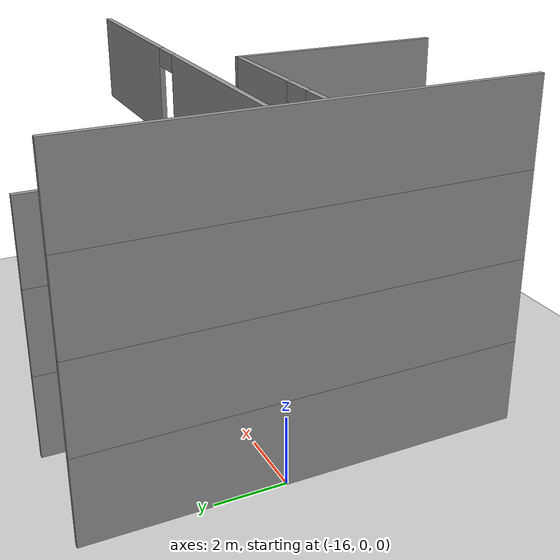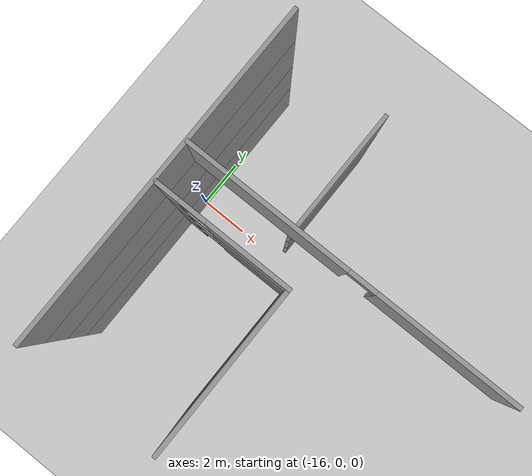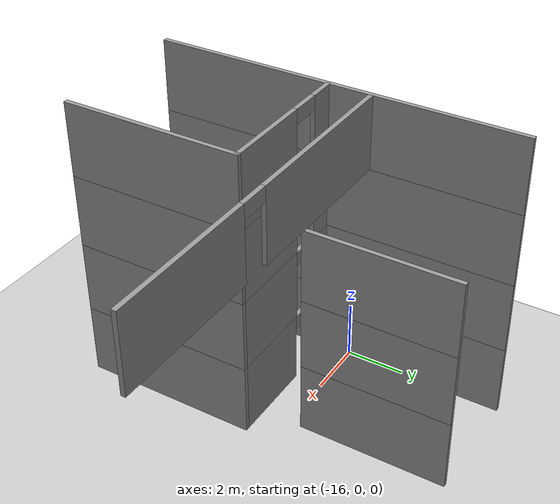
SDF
<sdf version="1.7">
 <world name="default">
  <model name="ground_plane">
   <static>1</static>
   <link name="link">
    <collision name="collision">
     <geometry><plane><normal>0 0 1</normal><size>100 100</size></plane></geometry>
     <surface>
      <contact><collide_bitmask>65535</collide_bitmask></contact>
      <friction><ode><mu>100</mu><mu2>50</mu2></ode></friction>
     </surface>
    </collision>
    <visual name="visual">
     <cast_shadows>0</cast_shadows>
     <geometry><plane><normal>0 0 1</normal><size>100 100</size></plane></geometry>
     <material>
      <script><uri>file://media/materials/scripts/gazebo.material</uri><name>Gazebo/Grey</name></script>
     </material>
    </visual>
   </link>
  </model>
  <model name="floor4plan_transp">
   <link name="Wall_101">
    <pose>-15.925 0 7.5 0 0 -1.5708</pose>
    <visual name="Wall_101_Visual">
     <pose>0 0 1.25 0 -0 0</pose>
     <geometry><box><size>12.5 0.15 2.5</size></box></geometry>
     <material>
      <script><uri>file://media/materials/scripts/gazebo.material</uri><name>Gazebo/Grey</name></script>
      <ambient>1 1 1 1</ambient>
      <shader type="pixel"/>
     </material>
     <meta><layer>3</layer></meta>
    </visual>
    <collision name="Wall_101_Collision">
     <pose>0 0 1.25 0 -0 0</pose>
     <geometry><box><size>12.5 0.15 2.5</size></box></geometry>
     <surface>
      <friction>
       <ode><mu>1</mu><mu2>1</mu2><fdir1>0 0 0</fdir1><slip1>0</slip1><slip2>0</slip2></ode>
       <torsional>
        <coefficient>1</coefficient>
        <patch_radius>0</patch_radius>
        <surface_radius>0</surface_radius>
        <use_patch_radius>1</use_patch_radius>
        <ode><slip>0</slip></ode>
       </torsional>
      </friction>
      <bounce><restitution_coefficient>0</restitution_coefficient><threshold>1e+06</threshold></bounce>
      <contact>
       <collide_without_contact>0</collide_without_contact>
       <collide_without_contact_bitmask>1</collide_without_contact_bitmask>
       <collide_bitmask>1</collide_bitmask>
       <ode>
        <soft_cfm>0</soft_cfm>
        <soft_erp>0.2</soft_erp>
        <kp>1e+13</kp>
        <kd>1</kd>
        <max_vel>0.01</max_vel>
        <min_depth>0</min_depth>
       </ode>
       <bullet>
        <split_impulse>1</split_impulse>
        <split_impulse_penetration_threshold>-0.01</split_impulse_penetration_threshold>
        <soft_cfm>0</soft_cfm>
        <soft_erp>0.2</soft_erp>
        <kp>1e+13</kp>
        <kd>1</kd>
       </bullet>
      </contact>
     </surface>
    </collision>
   </link>
   <link name="Wall_104">
    <pose>-9.94146 1.21683 7.5 0 -0 0</pose>
    <visual name="Wall_104_Visual_0">
     <pose>-3.03204 0 1.25 0 -0 0</pose>
     <geometry><box><size>5.93592 0.15 2.5</size></box></geometry>
     <material>
      <script><uri>file://media/materials/scripts/gazebo.material</uri><name>Gazebo/Grey</name></script>
      <ambient>1 1 1 1</ambient>
      <shader type="pixel"/>
     </material>
     <meta><layer>3</layer></meta>
    </visual>
    <visual name="Wall_104_Visual_1">
     <pose>3.46796 0 1.25 0 -0 0</pose>
     <geometry><box><size>5.06408 0.15 2.5</size></box></geometry>
     <material>
      <script><uri>file://media/materials/scripts/gazebo.material</uri><name>Gazebo/Grey</name></script>
      <ambient>1 1 1 1</ambient>
      <shader type="pixel"/>
     </material>
     <meta><layer>3</layer></meta>
    </visual>
    <visual name="Wall_104_Visual_2">
     <pose>0.435917 0 2.25 0 -0 0</pose>
     <geometry><box><size>1 0.15 0.5</size></box></geometry>
     <material>
      <script><uri>file://media/materials/scripts/gazebo.material</uri><name>Gazebo/Grey</name></script>
      <ambient>1 1 1 1</ambient>
      <shader type="pixel"/>
     </material>
     <meta><layer>3</layer></meta>
    </visual>
    <collision name="Wall_104_Collision_0">
     <pose>-3.03204 0 1.25 0 -0 0</pose>
     <geometry><box><size>5.93592 0.15 2.5</size></box></geometry>
     <surface>
      <friction>
       <ode><mu>1</mu><mu2>1</mu2><fdir1>0 0 0</fdir1><slip1>0</slip1><slip2>0</slip2></ode>
       <torsional>
        <coefficient>1</coefficient>
        <patch_radius>0</patch_radius>
        <surface_radius>0</surface_radius>
        <use_patch_radius>1</use_patch_radius>
        <ode><slip>0</slip></ode>
       </torsional>
      </friction>
      <bounce><restitution_coefficient>0</restitution_coefficient><threshold>1e+06</threshold></bounce>
      <contact>
       <collide_without_contact>0</collide_without_contact>
       <collide_without_contact_bitmask>1</collide_without_contact_bitmask>
       <collide_bitmask>1</collide_bitmask>
       <ode>
        <soft_cfm>0</soft_cfm>
        <soft_erp>0.2</soft_erp>
        <kp>1e+13</kp>
        <kd>1</kd>
        <max_vel>0.01</max_vel>
        <min_depth>0</min_depth>
       </ode>
       <bullet>
        <split_impulse>1</split_impulse>
        <split_impulse_penetration_threshold>-0.01</split_impulse_penetration_threshold>
        <soft_cfm>0</soft_cfm>
        <soft_erp>0.2</soft_erp>
        <kp>1e+13</kp>
        <kd>1</kd>
       </bullet>
      </contact>
     </surface>
    </collision>
    <collision name="Wall_104_Collision_1">
     <pose>3.46796 0 1.25 0 -0 0</pose>
     <geometry><box><size>5.06408 0.15 2.5</size></box></geometry>
     <surface>
      <friction>
       <ode><mu>1</mu><mu2>1</mu2><fdir1>0 0 0</fdir1><slip1>0</slip1><slip2>0</slip2></ode>
       <torsional>
        <coefficient>1</coefficient>
        <patch_radius>0</patch_radius>
        <surface_radius>0</surface_radius>
        <use_patch_radius>1</use_patch_radius>
        <ode><slip>0</slip></ode>
       </torsional>
      </friction>
      <bounce><restitution_coefficient>0</restitution_coefficient><threshold>1e+06</threshold></bounce>
      <contact>
       <collide_without_contact>0</collide_without_contact>
       <collide_without_contact_bitmask>1</collide_without_contact_bitmask>
       <collide_bitmask>1</collide_bitmask>
       <ode>
        <soft_cfm>0</soft_cfm>
        <soft_erp>0.2</soft_erp>
        <kp>1e+13</kp>
        <kd>1</kd>
        <max_vel>0.01</max_vel>
        <min_depth>0</min_depth>
       </ode>
       <bullet>
        <split_impulse>1</split_impulse>
        <split_impulse_penetration_threshold>-0.01</split_impulse_penetration_threshold>
        <soft_cfm>0</soft_cfm>
        <soft_erp>0.2</soft_erp>
        <kp>1e+13</kp>
        <kd>1</kd>
       </bullet>
      </contact>
     </surface>
    </collision>
    <collision name="Wall_104_Collision_2">
     <pose>0.435917 0 2.25 0 -0 0</pose>
     <geometry><box><size>1 0.15 0.5</size></box></geometry>
     <surface>
      <friction>
       <ode><mu>1</mu><mu2>1</mu2><fdir1>0 0 0</fdir1><slip1>0</slip1><slip2>0</slip2></ode>
       <torsional>
        <coefficient>1</coefficient>
        <patch_radius>0</patch_radius>
        <surface_radius>0</surface_radius>
        <use_patch_radius>1</use_patch_radius>
        <ode><slip>0</slip></ode>
       </torsional>
      </friction>
      <bounce><restitution_coefficient>0</restitution_coefficient><threshold>1e+06</threshold></bounce>
      <contact>
       <collide_without_contact>0</collide_without_contact>
       <collide_without_contact_bitmask>1</collide_without_contact_bitmask>
       <collide_bitmask>1</collide_bitmask>
       <ode>
        <soft_cfm>0</soft_cfm>
        <soft_erp>0.2</soft_erp>
        <kp>1e+13</kp>
        <kd>1</kd>
        <max_vel>0.01</max_vel>
        <min_depth>0</min_depth>
       </ode>
       <bullet>
        <split_impulse>1</split_impulse>
        <split_impulse_penetration_threshold>-0.01</split_impulse_penetration_threshold>
        <soft_cfm>0</soft_cfm>
        <soft_erp>0.2</soft_erp>
        <kp>1e+13</kp>
        <kd>1</kd>
       </bullet>
      </contact>
     </surface>
    </collision>
   </link>
   <link name="Wall_114">
    <pose>-13.4183 -0.240402 7.5 0 -0 0</pose>
    <visual name="Wall_114_Visual_0">
     <pose>-2.04171 0 1.25 0 -0 0</pose>
     <geometry><box><size>0.916574 0.15 2.5</size></box></geometry>
     <material>
      <script><uri>file://media/materials/scripts/gazebo.material</uri><name>Gazebo/Grey</name></script>
      <ambient>1 1 1 1</ambient>
      <shader type="pixel"/>
     </material>
     <meta><layer>3</layer></meta>
    </visual>
    <visual name="Wall_114_Visual_1">
     <pose>0.958287 0 1.25 0 -0 0</pose>
     <geometry><box><size>3.08343 0.15 2.5</size></box></geometry>
     <material>
      <script><uri>file://media/materials/scripts/gazebo.material</uri><name>Gazebo/Grey</name></script>
      <ambient>1 1 1 1</ambient>
      <shader type="pixel"/>
     </material>
     <meta><layer>3</layer></meta>
    </visual>
    <visual name="Wall_114_Visual_2">
     <pose>-1.08343 0 2.25 0 -0 0</pose>
     <geometry><box><size>1 0.15 0.5</size></box></geometry>
     <material>
      <script><uri>file://media/materials/scripts/gazebo.material</uri><name>Gazebo/Grey</name></script>
      <ambient>1 1 1 1</ambient>
      <shader type="pixel"/>
     </material>
     <meta><layer>3</layer></meta>
    </visual>
    <collision name="Wall_114_Collision_0">
     <pose>-2.04171 0 1.25 0 -0 0</pose>
     <geometry><box><size>0.916574 0.15 2.5</size></box></geometry>
     <surface>
      <friction>
       <ode><mu>1</mu><mu2>1</mu2><fdir1>0 0 0</fdir1><slip1>0</slip1><slip2>0</slip2></ode>
       <torsional>
        <coefficient>1</coefficient>
        <patch_radius>0</patch_radius>
        <surface_radius>0</surface_radius>
        <use_patch_radius>1</use_patch_radius>
        <ode><slip>0</slip></ode>
       </torsional>
      </friction>
      <bounce><restitution_coefficient>0</restitution_coefficient><threshold>1e+06</threshold></bounce>
      <contact>
       <collide_without_contact>0</collide_without_contact>
       <collide_without_contact_bitmask>1</collide_without_contact_bitmask>
       <collide_bitmask>1</collide_bitmask>
       <ode>
        <soft_cfm>0</soft_cfm>
        <soft_erp>0.2</soft_erp>
        <kp>1e+13</kp>
        <kd>1</kd>
        <max_vel>0.01</max_vel>
        <min_depth>0</min_depth>
       </ode>
       <bullet>
        <split_impulse>1</split_impulse>
        <split_impulse_penetration_threshold>-0.01</split_impulse_penetration_threshold>
        <soft_cfm>0</soft_cfm>
        <soft_erp>0.2</soft_erp>
        <kp>1e+13</kp>
        <kd>1</kd>
       </bullet>
      </contact>
     </surface>
    </collision>
    <collision name="Wall_114_Collision_1">
     <pose>0.958287 0 1.25 0 -0 0</pose>
     <geometry><box><size>3.08343 0.15 2.5</size></box></geometry>
     <surface>
      <friction>
       <ode><mu>1</mu><mu2>1</mu2><fdir1>0 0 0</fdir1><slip1>0</slip1><slip2>0</slip2></ode>
       <torsional>
        <coefficient>1</coefficient>
        <patch_radius>0</patch_radius>
        <surface_radius>0</surface_radius>
        <use_patch_radius>1</use_patch_radius>
        <ode><slip>0</slip></ode>
       </torsional>
      </friction>
      <bounce><restitution_coefficient>0</restitution_coefficient><threshold>1e+06</threshold></bounce>
      <contact>
       <collide_without_contact>0</collide_without_contact>
       <collide_without_contact_bitmask>1</collide_without_contact_bitmask>
       <collide_bitmask>1</collide_bitmask>
       <ode>
        <soft_cfm>0</soft_cfm>
        <soft_erp>0.2</soft_erp>
        <kp>1e+13</kp>
        <kd>1</kd>
        <max_vel>0.01</max_vel>
        <min_depth>0</min_depth>
       </ode>
       <bullet>
        <split_impulse>1</split_impulse>
        <split_impulse_penetration_threshold>-0.01</split_impulse_penetration_threshold>
        <soft_cfm>0</soft_cfm>
        <soft_erp>0.2</soft_erp>
        <kp>1e+13</kp>
        <kd>1</kd>
       </bullet>
      </contact>
     </surface>
    </collision>
    <collision name="Wall_114_Collision_2">
     <pose>-1.08343 0 2.25 0 -0 0</pose>
     <geometry><box><size>1 0.15 0.5</size></box></geometry>
     <surface>
      <friction>
       <ode><mu>1</mu><mu2>1</mu2><fdir1>0 0 0</fdir1><slip1>0</slip1><slip2>0</slip2></ode>
       <torsional>
        <coefficient>1</coefficient>
        <patch_radius>0</patch_radius>
        <surface_radius>0</surface_radius>
        <use_patch_radius>1</use_patch_radius>
        <ode><slip>0</slip></ode>
       </torsional>
      </friction>
      <bounce><restitution_coefficient>0</restitution_coefficient><threshold>1e+06</threshold></bounce>
      <contact>
       <collide_without_contact>0</collide_without_contact>
       <collide_without_contact_bitmask>1</collide_without_contact_bitmask>
       <collide_bitmask>1</collide_bitmask>
       <ode>
        <soft_cfm>0</soft_cfm>
        <soft_erp>0.2</soft_erp>
        <kp>1e+13</kp>
        <kd>1</kd>
        <max_vel>0.01</max_vel>
        <min_depth>0</min_depth>
       </ode>
       <bullet>
        <split_impulse>1</split_impulse>
        <split_impulse_penetration_threshold>-0.01</split_impulse_penetration_threshold>
        <soft_cfm>0</soft_cfm>
        <soft_erp>0.2</soft_erp>
        <kp>1e+13</kp>
        <kd>1</kd>
       </bullet>
      </contact>
     </surface>
    </collision>
   </link>
   <link name="Wall_115">
    <pose>-10.9933 -3.1654 7.5 0 0 -1.5708</pose>
    <visual name="Wall_115_Visual">
     <pose>0 0 1.25 0 -0 0</pose>
     <geometry><box><size>6 0.15 2.5</size></box></geometry>
     <material>
      <script><uri>file://media/materials/scripts/gazebo.material</uri><name>Gazebo/Grey</name></script>
      <ambient>1 1 1 1</ambient>
      <shader type="pixel"/>
     </material>
     <meta><layer>3</layer></meta>
    </visual>
    <collision name="Wall_115_Collision">
     <pose>0 0 1.25 0 -0 0</pose>
     <geometry><box><size>6 0.15 2.5</size></box></geometry>
     <surface>
      <friction>
       <ode><mu>1</mu><mu2>1</mu2><fdir1>0 0 0</fdir1><slip1>0</slip1><slip2>0</slip2></ode>
       <torsional>
        <coefficient>1</coefficient>
        <patch_radius>0</patch_radius>
        <surface_radius>0</surface_radius>
        <use_patch_radius>1</use_patch_radius>
        <ode><slip>0</slip></ode>
       </torsional>
      </friction>
      <bounce><restitution_coefficient>0</restitution_coefficient><threshold>1e+06</threshold></bounce>
      <contact>
       <collide_without_contact>0</collide_without_contact>
       <collide_without_contact_bitmask>1</collide_without_contact_bitmask>
       <collide_bitmask>1</collide_bitmask>
       <ode>
        <soft_cfm>0</soft_cfm>
        <soft_erp>0.2</soft_erp>
        <kp>1e+13</kp>
        <kd>1</kd>
        <max_vel>0.01</max_vel>
        <min_depth>0</min_depth>
       </ode>
       <bullet>
        <split_impulse>1</split_impulse>
        <split_impulse_penetration_threshold>-0.01</split_impulse_penetration_threshold>
        <soft_cfm>0</soft_cfm>
        <soft_erp>0.2</soft_erp>
        <kp>1e+13</kp>
        <kd>1</kd>
       </bullet>
      </contact>
     </surface>
    </collision>
   </link>
   <link name="Wall_15">
    <pose>-12.0268 3.69551 0 0 0 -1.5708</pose>
    <visual name="Wall_15_Visual">
     <pose>0 0 1.25 0 -0 0</pose>
     <geometry><box><size>5 0.15 2.5</size></box></geometry>
     <material>
      <script><uri>file://media/materials/scripts/gazebo.material</uri><name>Gazebo/Grey</name></script>
      <ambient>1 1 1 1</ambient>
      <shader type="pixel"/>
     </material>
     <meta><layer>0</layer></meta>
    </visual>
    <collision name="Wall_15_Collision">
     <pose>0 0 1.25 0 -0 0</pose>
     <geometry><box><size>5 0.15 2.5</size></box></geometry>
     <surface>
      <friction>
       <ode><mu>1</mu><mu2>1</mu2><fdir1>0 0 0</fdir1><slip1>0</slip1><slip2>0</slip2></ode>
       <torsional>
        <coefficient>1</coefficient>
        <patch_radius>0</patch_radius>
        <surface_radius>0</surface_radius>
        <use_patch_radius>1</use_patch_radius>
        <ode><slip>0</slip></ode>
       </torsional>
      </friction>
      <bounce><restitution_coefficient>0</restitution_coefficient><threshold>1e+06</threshold></bounce>
      <contact>
       <collide_without_contact>0</collide_without_contact>
       <collide_without_contact_bitmask>1</collide_without_contact_bitmask>
       <collide_bitmask>1</collide_bitmask>
       <ode>
        <soft_cfm>0</soft_cfm>
        <soft_erp>0.2</soft_erp>
        <kp>1e+13</kp>
        <kd>1</kd>
        <max_vel>0.01</max_vel>
        <min_depth>0</min_depth>
       </ode>
       <bullet>
        <split_impulse>1</split_impulse>
        <split_impulse_penetration_threshold>-0.01</split_impulse_penetration_threshold>
        <soft_cfm>0</soft_cfm>
        <soft_erp>0.2</soft_erp>
        <kp>1e+13</kp>
        <kd>1</kd>
       </bullet>
      </contact>
     </surface>
    </collision>
   </link>
   <link name="Wall_2">
    <pose>-15.925 0 0 0 0 -1.5708</pose>
    <visual name="Wall_2_Visual">
     <pose>0 0 1.25 0 -0 0</pose>
     <geometry><box><size>12.5 0.15 2.5</size></box></geometry>
     <material>
      <script><uri>file://media/materials/scripts/gazebo.material</uri><name>Gazebo/Grey</name></script>
      <ambient>1 1 1 1</ambient>
      <shader type="pixel"/>
     </material>
     <meta><layer>0</layer></meta>
    </visual>
    <collision name="Wall_2_Collision">
     <pose>0 0 1.25 0 -0 0</pose>
     <geometry><box><size>12.5 0.15 2.5</size></box></geometry>
     <surface>
      <friction>
       <ode><mu>1</mu><mu2>1</mu2><fdir1>0 0 0</fdir1><slip1>0</slip1><slip2>0</slip2></ode>
       <torsional>
        <coefficient>1</coefficient>
        <patch_radius>0</patch_radius>
        <surface_radius>0</surface_radius>
        <use_patch_radius>1</use_patch_radius>
        <ode><slip>0</slip></ode>
       </torsional>
      </friction>
      <bounce><restitution_coefficient>0</restitution_coefficient><threshold>1e+06</threshold></bounce>
      <contact>
       <collide_without_contact>0</collide_without_contact>
       <collide_without_contact_bitmask>1</collide_without_contact_bitmask>
       <collide_bitmask>1</collide_bitmask>
       <ode>
        <soft_cfm>0</soft_cfm>
        <soft_erp>0.2</soft_erp>
        <kp>1e+13</kp>
        <kd>1</kd>
        <max_vel>0.01</max_vel>
        <min_depth>0</min_depth>
       </ode>
       <bullet>
        <split_impulse>1</split_impulse>
        <split_impulse_penetration_threshold>-0.01</split_impulse_penetration_threshold>
        <soft_cfm>0</soft_cfm>
        <soft_erp>0.2</soft_erp>
        <kp>1e+13</kp>
        <kd>1</kd>
       </bullet>
      </contact>
     </surface>
    </collision>
   </link>
   <link name="Wall_29">
    <pose>-13.4183 -0.240402 0 0 -0 0</pose>
    <visual name="Wall_29_Visual_0">
     <pose>-2.01858 0 1.25 0 -0 0</pose>
     <geometry><box><size>0.962836 0.15 2.5</size></box></geometry>
     <material>
      <script><uri>file://media/materials/scripts/gazebo.material</uri><name>Gazebo/Grey</name></script>
      <ambient>1 1 1 1</ambient>
      <shader type="pixel"/>
     </material>
     <meta><layer>0</layer></meta>
    </visual>
    <visual name="Wall_29_Visual_1">
     <pose>0.981418 0 1.25 0 -0 0</pose>
     <geometry><box><size>3.03716 0.15 2.5</size></box></geometry>
     <material>
      <script><uri>file://media/materials/scripts/gazebo.material</uri><name>Gazebo/Grey</name></script>
      <ambient>1 1 1 1</ambient>
      <shader type="pixel"/>
     </material>
     <meta><layer>0</layer></meta>
    </visual>
    <visual name="Wall_29_Visual_2">
     <pose>-1.03716 0 2.25 0 -0 0</pose>
     <geometry><box><size>1 0.15 0.5</size></box></geometry>
     <material>
      <script><uri>file://media/materials/scripts/gazebo.material</uri><name>Gazebo/Grey</name></script>
      <ambient>1 1 1 1</ambient>
      <shader type="pixel"/>
     </material>
     <meta><layer>0</layer></meta>
    </visual>
    <collision name="Wall_29_Collision_0">
     <pose>-2.01858 0 1.25 0 -0 0</pose>
     <geometry><box><size>0.962836 0.15 2.5</size></box></geometry>
     <surface>
      <friction>
       <ode><mu>1</mu><mu2>1</mu2><fdir1>0 0 0</fdir1><slip1>0</slip1><slip2>0</slip2></ode>
       <torsional>
        <coefficient>1</coefficient>
        <patch_radius>0</patch_radius>
        <surface_radius>0</surface_radius>
        <use_patch_radius>1</use_patch_radius>
        <ode><slip>0</slip></ode>
       </torsional>
      </friction>
      <bounce><restitution_coefficient>0</restitution_coefficient><threshold>1e+06</threshold></bounce>
      <contact>
       <collide_without_contact>0</collide_without_contact>
       <collide_without_contact_bitmask>1</collide_without_contact_bitmask>
       <collide_bitmask>1</collide_bitmask>
       <ode>
        <soft_cfm>0</soft_cfm>
        <soft_erp>0.2</soft_erp>
        <kp>1e+13</kp>
        <kd>1</kd>
        <max_vel>0.01</max_vel>
        <min_depth>0</min_depth>
       </ode>
       <bullet>
        <split_impulse>1</split_impulse>
        <split_impulse_penetration_threshold>-0.01</split_impulse_penetration_threshold>
        <soft_cfm>0</soft_cfm>
        <soft_erp>0.2</soft_erp>
        <kp>1e+13</kp>
        <kd>1</kd>
       </bullet>
      </contact>
     </surface>
    </collision>
    <collision name="Wall_29_Collision_1">
     <pose>0.981418 0 1.25 0 -0 0</pose>
     <geometry><box><size>3.03716 0.15 2.5</size></box></geometry>
     <surface>
      <friction>
       <ode><mu>1</mu><mu2>1</mu2><fdir1>0 0 0</fdir1><slip1>0</slip1><slip2>0</slip2></ode>
       <torsional>
        <coefficient>1</coefficient>
        <patch_radius>0</patch_radius>
        <surface_radius>0</surface_radius>
        <use_patch_radius>1</use_patch_radius>
        <ode><slip>0</slip></ode>
       </torsional>
      </friction>
      <bounce><restitution_coefficient>0</restitution_coefficient><threshold>1e+06</threshold></bounce>
      <contact>
       <collide_without_contact>0</collide_without_contact>
       <collide_without_contact_bitmask>1</collide_without_contact_bitmask>
       <collide_bitmask>1</collide_bitmask>
       <ode>
        <soft_cfm>0</soft_cfm>
        <soft_erp>0.2</soft_erp>
        <kp>1e+13</kp>
        <kd>1</kd>
        <max_vel>0.01</max_vel>
        <min_depth>0</min_depth>
       </ode>
       <bullet>
        <split_impulse>1</split_impulse>
        <split_impulse_penetration_threshold>-0.01</split_impulse_penetration_threshold>
        <soft_cfm>0</soft_cfm>
        <soft_erp>0.2</soft_erp>
        <kp>1e+13</kp>
        <kd>1</kd>
       </bullet>
      </contact>
     </surface>
    </collision>
    <collision name="Wall_29_Collision_2">
     <pose>-1.03716 0 2.25 0 -0 0</pose>
     <geometry><box><size>1 0.15 0.5</size></box></geometry>
     <surface>
      <friction>
       <ode><mu>1</mu><mu2>1</mu2><fdir1>0 0 0</fdir1><slip1>0</slip1><slip2>0</slip2></ode>
       <torsional>
        <coefficient>1</coefficient>
        <patch_radius>0</patch_radius>
        <surface_radius>0</surface_radius>
        <use_patch_radius>1</use_patch_radius>
        <ode><slip>0</slip></ode>
       </torsional>
      </friction>
      <bounce><restitution_coefficient>0</restitution_coefficient><threshold>1e+06</threshold></bounce>
      <contact>
       <collide_without_contact>0</collide_without_contact>
       <collide_without_contact_bitmask>1</collide_without_contact_bitmask>
       <collide_bitmask>1</collide_bitmask>
       <ode>
        <soft_cfm>0</soft_cfm>
        <soft_erp>0.2</soft_erp>
        <kp>1e+13</kp>
        <kd>1</kd>
        <max_vel>0.01</max_vel>
        <min_depth>0</min_depth>
       </ode>
       <bullet>
        <split_impulse>1</split_impulse>
        <split_impulse_penetration_threshold>-0.01</split_impulse_penetration_threshold>
        <soft_cfm>0</soft_cfm>
        <soft_erp>0.2</soft_erp>
        <kp>1e+13</kp>
        <kd>1</kd>
       </bullet>
      </contact>
     </surface>
    </collision>
   </link>
   <link name="Wall_31">
    <pose>-10.9933 -3.1654 0 0 0 -1.5708</pose>
    <visual name="Wall_31_Visual">
     <pose>0 0 1.25 0 -0 0</pose>
     <geometry><box><size>6 0.15 2.5</size></box></geometry>
     <material>
      <script><uri>file://media/materials/scripts/gazebo.material</uri><name>Gazebo/Grey</name></script>
      <ambient>1 1 1 1</ambient>
      <shader type="pixel"/>
     </material>
     <meta><layer>0</layer></meta>
    </visual>
    <collision name="Wall_31_Collision">
     <pose>0 0 1.25 0 -0 0</pose>
     <geometry><box><size>6 0.15 2.5</size></box></geometry>
     <surface>
      <friction>
       <ode><mu>1</mu><mu2>1</mu2><fdir1>0 0 0</fdir1><slip1>0</slip1><slip2>0</slip2></ode>
       <torsional>
        <coefficient>1</coefficient>
        <patch_radius>0</patch_radius>
        <surface_radius>0</surface_radius>
        <use_patch_radius>1</use_patch_radius>
        <ode><slip>0</slip></ode>
       </torsional>
      </friction>
      <bounce><restitution_coefficient>0</restitution_coefficient><threshold>1e+06</threshold></bounce>
      <contact>
       <collide_without_contact>0</collide_without_contact>
       <collide_without_contact_bitmask>1</collide_without_contact_bitmask>
       <collide_bitmask>1</collide_bitmask>
       <ode>
        <soft_cfm>0</soft_cfm>
        <soft_erp>0.2</soft_erp>
        <kp>1e+13</kp>
        <kd>1</kd>
        <max_vel>0.01</max_vel>
        <min_depth>0</min_depth>
       </ode>
       <bullet>
        <split_impulse>1</split_impulse>
        <split_impulse_penetration_threshold>-0.01</split_impulse_penetration_threshold>
        <soft_cfm>0</soft_cfm>
        <soft_erp>0.2</soft_erp>
        <kp>1e+13</kp>
        <kd>1</kd>
       </bullet>
      </contact>
     </surface>
    </collision>
   </link>
   <link name="Wall_51">
    <pose>-15.925 0 2.5 0 0 -1.5708</pose>
    <visual name="Wall_51_Visual">
     <pose>0 0 1.25 0 -0 0</pose>
     <geometry><box><size>12.5 0.15 2.5</size></box></geometry>
     <material>
      <script><uri>file://media/materials/scripts/gazebo.material</uri><name>Gazebo/Grey</name></script>
      <ambient>1 1 1 1</ambient>
      <shader type="pixel"/>
     </material>
     <meta><layer>1</layer></meta>
    </visual>
    <collision name="Wall_51_Collision">
     <pose>0 0 1.25 0 -0 0</pose>
     <geometry><box><size>12.5 0.15 2.5</size></box></geometry>
     <surface>
      <friction>
       <ode><mu>1</mu><mu2>1</mu2><fdir1>0 0 0</fdir1><slip1>0</slip1><slip2>0</slip2></ode>
       <torsional>
        <coefficient>1</coefficient>
        <patch_radius>0</patch_radius>
        <surface_radius>0</surface_radius>
        <use_patch_radius>1</use_patch_radius>
        <ode><slip>0</slip></ode>
       </torsional>
      </friction>
      <bounce><restitution_coefficient>0</restitution_coefficient><threshold>1e+06</threshold></bounce>
      <contact>
       <collide_without_contact>0</collide_without_contact>
       <collide_without_contact_bitmask>1</collide_without_contact_bitmask>
       <collide_bitmask>1</collide_bitmask>
       <ode>
        <soft_cfm>0</soft_cfm>
        <soft_erp>0.2</soft_erp>
        <kp>1e+13</kp>
        <kd>1</kd>
        <max_vel>0.01</max_vel>
        <min_depth>0</min_depth>
       </ode>
       <bullet>
        <split_impulse>1</split_impulse>
        <split_impulse_penetration_threshold>-0.01</split_impulse_penetration_threshold>
        <soft_cfm>0</soft_cfm>
        <soft_erp>0.2</soft_erp>
        <kp>1e+13</kp>
        <kd>1</kd>
       </bullet>
      </contact>
     </surface>
    </collision>
   </link>
   <link name="Wall_57">
    <pose>-12.0268 3.69551 2.5 0 0 -1.5708</pose>
    <visual name="Wall_57_Visual">
     <pose>0 0 1.25 0 -0 0</pose>
     <geometry><box><size>5 0.15 2.5</size></box></geometry>
     <material>
      <script><uri>file://media/materials/scripts/gazebo.material</uri><name>Gazebo/Grey</name></script>
      <ambient>1 1 1 1</ambient>
      <shader type="pixel"/>
     </material>
     <meta><layer>1</layer></meta>
    </visual>
    <collision name="Wall_57_Collision">
     <pose>0 0 1.25 0 -0 0</pose>
     <geometry><box><size>5 0.15 2.5</size></box></geometry>
     <surface>
      <friction>
       <ode><mu>1</mu><mu2>1</mu2><fdir1>0 0 0</fdir1><slip1>0</slip1><slip2>0</slip2></ode>
       <torsional>
        <coefficient>1</coefficient>
        <patch_radius>0</patch_radius>
        <surface_radius>0</surface_radius>
        <use_patch_radius>1</use_patch_radius>
        <ode><slip>0</slip></ode>
       </torsional>
      </friction>
      <bounce><restitution_coefficient>0</restitution_coefficient><threshold>1e+06</threshold></bounce>
      <contact>
       <collide_without_contact>0</collide_without_contact>
       <collide_without_contact_bitmask>1</collide_without_contact_bitmask>
       <collide_bitmask>1</collide_bitmask>
       <ode>
        <soft_cfm>0</soft_cfm>
        <soft_erp>0.2</soft_erp>
        <kp>1e+13</kp>
        <kd>1</kd>
        <max_vel>0.01</max_vel>
        <min_depth>0</min_depth>
       </ode>
       <bullet>
        <split_impulse>1</split_impulse>
        <split_impulse_penetration_threshold>-0.01</split_impulse_penetration_threshold>
        <soft_cfm>0</soft_cfm>
        <soft_erp>0.2</soft_erp>
        <kp>1e+13</kp>
        <kd>1</kd>
       </bullet>
      </contact>
     </surface>
    </collision>
   </link>
   <link name="Wall_64">
    <pose>-13.4183 -0.240402 2.5 0 -0 0</pose>
    <visual name="Wall_64_Visual_0">
     <pose>-2.04171 0 1.25 0 -0 0</pose>
     <geometry><box><size>0.916574 0.15 2.5</size></box></geometry>
     <material>
      <script><uri>file://media/materials/scripts/gazebo.material</uri><name>Gazebo/Grey</name></script>
      <ambient>1 1 1 1</ambient>
      <shader type="pixel"/>
     </material>
     <meta><layer>1</layer></meta>
    </visual>
    <visual name="Wall_64_Visual_1">
     <pose>0.958287 0 1.25 0 -0 0</pose>
     <geometry><box><size>3.08343 0.15 2.5</size></box></geometry>
     <material>
      <script><uri>file://media/materials/scripts/gazebo.material</uri><name>Gazebo/Grey</name></script>
      <ambient>1 1 1 1</ambient>
      <shader type="pixel"/>
     </material>
     <meta><layer>1</layer></meta>
    </visual>
    <visual name="Wall_64_Visual_2">
     <pose>-1.08343 0 2.25 0 -0 0</pose>
     <geometry><box><size>1 0.15 0.5</size></box></geometry>
     <material>
      <script><uri>file://media/materials/scripts/gazebo.material</uri><name>Gazebo/Grey</name></script>
      <ambient>1 1 1 1</ambient>
      <shader type="pixel"/>
     </material>
     <meta><layer>1</layer></meta>
    </visual>
    <collision name="Wall_64_Collision_0">
     <pose>-2.04171 0 1.25 0 -0 0</pose>
     <geometry><box><size>0.916574 0.15 2.5</size></box></geometry>
     <surface>
      <friction>
       <ode><mu>1</mu><mu2>1</mu2><fdir1>0 0 0</fdir1><slip1>0</slip1><slip2>0</slip2></ode>
       <torsional>
        <coefficient>1</coefficient>
        <patch_radius>0</patch_radius>
        <surface_radius>0</surface_radius>
        <use_patch_radius>1</use_patch_radius>
        <ode><slip>0</slip></ode>
       </torsional>
      </friction>
      <bounce><restitution_coefficient>0</restitution_coefficient><threshold>1e+06</threshold></bounce>
      <contact>
       <collide_without_contact>0</collide_without_contact>
       <collide_without_contact_bitmask>1</collide_without_contact_bitmask>
       <collide_bitmask>1</collide_bitmask>
       <ode>
        <soft_cfm>0</soft_cfm>
        <soft_erp>0.2</soft_erp>
        <kp>1e+13</kp>
        <kd>1</kd>
        <max_vel>0.01</max_vel>
        <min_depth>0</min_depth>
       </ode>
       <bullet>
        <split_impulse>1</split_impulse>
        <split_impulse_penetration_threshold>-0.01</split_impulse_penetration_threshold>
        <soft_cfm>0</soft_cfm>
        <soft_erp>0.2</soft_erp>
        <kp>1e+13</kp>
        <kd>1</kd>
       </bullet>
      </contact>
     </surface>
    </collision>
    <collision name="Wall_64_Collision_1">
     <pose>0.958287 0 1.25 0 -0 0</pose>
     <geometry><box><size>3.08343 0.15 2.5</size></box></geometry>
     <surface>
      <friction>
       <ode><mu>1</mu><mu2>1</mu2><fdir1>0 0 0</fdir1><slip1>0</slip1><slip2>0</slip2></ode>
       <torsional>
        <coefficient>1</coefficient>
        <patch_radius>0</patch_radius>
        <surface_radius>0</surface_radius>
        <use_patch_radius>1</use_patch_radius>
        <ode><slip>0</slip></ode>
       </torsional>
      </friction>
      <bounce><restitution_coefficient>0</restitution_coefficient><threshold>1e+06</threshold></bounce>
      <contact>
       <collide_without_contact>0</collide_without_contact>
       <collide_without_contact_bitmask>1</collide_without_contact_bitmask>
       <collide_bitmask>1</collide_bitmask>
       <ode>
        <soft_cfm>0</soft_cfm>
        <soft_erp>0.2</soft_erp>
        <kp>1e+13</kp>
        <kd>1</kd>
        <max_vel>0.01</max_vel>
        <min_depth>0</min_depth>
       </ode>
       <bullet>
        <split_impulse>1</split_impulse>
        <split_impulse_penetration_threshold>-0.01</split_impulse_penetration_threshold>
        <soft_cfm>0</soft_cfm>
        <soft_erp>0.2</soft_erp>
        <kp>1e+13</kp>
        <kd>1</kd>
       </bullet>
      </contact>
     </surface>
    </collision>
    <collision name="Wall_64_Collision_2">
     <pose>-1.08343 0 2.25 0 -0 0</pose>
     <geometry><box><size>1 0.15 0.5</size></box></geometry>
     <surface>
      <friction>
       <ode><mu>1</mu><mu2>1</mu2><fdir1>0 0 0</fdir1><slip1>0</slip1><slip2>0</slip2></ode>
       <torsional>
        <coefficient>1</coefficient>
        <patch_radius>0</patch_radius>
        <surface_radius>0</surface_radius>
        <use_patch_radius>1</use_patch_radius>
        <ode><slip>0</slip></ode>
       </torsional>
      </friction>
      <bounce><restitution_coefficient>0</restitution_coefficient><threshold>1e+06</threshold></bounce>
      <contact>
       <collide_without_contact>0</collide_without_contact>
       <collide_without_contact_bitmask>1</collide_without_contact_bitmask>
       <collide_bitmask>1</collide_bitmask>
       <ode>
        <soft_cfm>0</soft_cfm>
        <soft_erp>0.2</soft_erp>
        <kp>1e+13</kp>
        <kd>1</kd>
        <max_vel>0.01</max_vel>
        <min_depth>0</min_depth>
       </ode>
       <bullet>
        <split_impulse>1</split_impulse>
        <split_impulse_penetration_threshold>-0.01</split_impulse_penetration_threshold>
        <soft_cfm>0</soft_cfm>
        <soft_erp>0.2</soft_erp>
        <kp>1e+13</kp>
        <kd>1</kd>
       </bullet>
      </contact>
     </surface>
    </collision>
   </link>
   <link name="Wall_65">
    <pose>-10.9933 -3.1654 2.5 0 0 -1.5708</pose>
    <visual name="Wall_65_Visual">
     <pose>0 0 1.25 0 -0 0</pose>
     <geometry><box><size>6 0.15 2.5</size></box></geometry>
     <material>
      <script><uri>file://media/materials/scripts/gazebo.material</uri><name>Gazebo/Grey</name></script>
      <ambient>1 1 1 1</ambient>
      <shader type="pixel"/>
     </material>
     <meta><layer>1</layer></meta>
    </visual>
    <collision name="Wall_65_Collision">
     <pose>0 0 1.25 0 -0 0</pose>
     <geometry><box><size>6 0.15 2.5</size></box></geometry>
     <surface>
      <friction>
       <ode><mu>1</mu><mu2>1</mu2><fdir1>0 0 0</fdir1><slip1>0</slip1><slip2>0</slip2></ode>
       <torsional>
        <coefficient>1</coefficient>
        <patch_radius>0</patch_radius>
        <surface_radius>0</surface_radius>
        <use_patch_radius>1</use_patch_radius>
        <ode><slip>0</slip></ode>
       </torsional>
      </friction>
      <bounce><restitution_coefficient>0</restitution_coefficient><threshold>1e+06</threshold></bounce>
      <contact>
       <collide_without_contact>0</collide_without_contact>
       <collide_without_contact_bitmask>1</collide_without_contact_bitmask>
       <collide_bitmask>1</collide_bitmask>
       <ode>
        <soft_cfm>0</soft_cfm>
        <soft_erp>0.2</soft_erp>
        <kp>1e+13</kp>
        <kd>1</kd>
        <max_vel>0.01</max_vel>
        <min_depth>0</min_depth>
       </ode>
       <bullet>
        <split_impulse>1</split_impulse>
        <split_impulse_penetration_threshold>-0.01</split_impulse_penetration_threshold>
        <soft_cfm>0</soft_cfm>
        <soft_erp>0.2</soft_erp>
        <kp>1e+13</kp>
        <kd>1</kd>
       </bullet>
      </contact>
     </surface>
    </collision>
   </link>
   <link name="Wall_76">
    <pose>-15.925 0 5 0 0 -1.5708</pose>
    <visual name="Wall_76_Visual">
     <pose>0 0 1.25 0 -0 0</pose>
     <geometry><box><size>12.5 0.15 2.5</size></box></geometry>
     <material>
      <script><uri>file://media/materials/scripts/gazebo.material</uri><name>Gazebo/Grey</name></script>
      <ambient>1 1 1 1</ambient>
      <shader type="pixel"/>
     </material>
     <meta><layer>2</layer></meta>
    </visual>
    <collision name="Wall_76_Collision">
     <pose>0 0 1.25 0 -0 0</pose>
     <geometry><box><size>12.5 0.15 2.5</size></box></geometry>
     <surface>
      <friction>
       <ode><mu>1</mu><mu2>1</mu2><fdir1>0 0 0</fdir1><slip1>0</slip1><slip2>0</slip2></ode>
       <torsional>
        <coefficient>1</coefficient>
        <patch_radius>0</patch_radius>
        <surface_radius>0</surface_radius>
        <use_patch_radius>1</use_patch_radius>
        <ode><slip>0</slip></ode>
       </torsional>
      </friction>
      <bounce><restitution_coefficient>0</restitution_coefficient><threshold>1e+06</threshold></bounce>
      <contact>
       <collide_without_contact>0</collide_without_contact>
       <collide_without_contact_bitmask>1</collide_without_contact_bitmask>
       <collide_bitmask>1</collide_bitmask>
       <ode>
        <soft_cfm>0</soft_cfm>
        <soft_erp>0.2</soft_erp>
        <kp>1e+13</kp>
        <kd>1</kd>
        <max_vel>0.01</max_vel>
        <min_depth>0</min_depth>
       </ode>
       <bullet>
        <split_impulse>1</split_impulse>
        <split_impulse_penetration_threshold>-0.01</split_impulse_penetration_threshold>
        <soft_cfm>0</soft_cfm>
        <soft_erp>0.2</soft_erp>
        <kp>1e+13</kp>
        <kd>1</kd>
       </bullet>
      </contact>
     </surface>
    </collision>
   </link>
   <link name="Wall_82">
    <pose>-12.0268 3.69551 5 0 0 -1.5708</pose>
    <visual name="Wall_82_Visual">
     <pose>0 0 1.25 0 -0 0</pose>
     <geometry><box><size>5 0.15 2.5</size></box></geometry>
     <material>
      <script><uri>file://media/materials/scripts/gazebo.material</uri><name>Gazebo/Grey</name></script>
      <ambient>1 1 1 1</ambient>
      <shader type="pixel"/>
     </material>
     <meta><layer>2</layer></meta>
    </visual>
    <collision name="Wall_82_Collision">
     <pose>0 0 1.25 0 -0 0</pose>
     <geometry><box><size>5 0.15 2.5</size></box></geometry>
     <surface>
      <friction>
       <ode><mu>1</mu><mu2>1</mu2><fdir1>0 0 0</fdir1><slip1>0</slip1><slip2>0</slip2></ode>
       <torsional>
        <coefficient>1</coefficient>
        <patch_radius>0</patch_radius>
        <surface_radius>0</surface_radius>
        <use_patch_radius>1</use_patch_radius>
        <ode><slip>0</slip></ode>
       </torsional>
      </friction>
      <bounce><restitution_coefficient>0</restitution_coefficient><threshold>1e+06</threshold></bounce>
      <contact>
       <collide_without_contact>0</collide_without_contact>
       <collide_without_contact_bitmask>1</collide_without_contact_bitmask>
       <collide_bitmask>1</collide_bitmask>
       <ode>
        <soft_cfm>0</soft_cfm>
        <soft_erp>0.2</soft_erp>
        <kp>1e+13</kp>
        <kd>1</kd>
        <max_vel>0.01</max_vel>
        <min_depth>0</min_depth>
       </ode>
       <bullet>
        <split_impulse>1</split_impulse>
        <split_impulse_penetration_threshold>-0.01</split_impulse_penetration_threshold>
        <soft_cfm>0</soft_cfm>
        <soft_erp>0.2</soft_erp>
        <kp>1e+13</kp>
        <kd>1</kd>
       </bullet>
      </contact>
     </surface>
    </collision>
   </link>
   <link name="Wall_89">
    <pose>-13.4183 -0.240402 5 0 -0 0</pose>
    <visual name="Wall_89_Visual_0">
     <pose>-2.04171 0 1.25 0 -0 0</pose>
     <geometry><box><size>0.916574 0.15 2.5</size></box></geometry>
     <material>
      <script><uri>file://media/materials/scripts/gazebo.material</uri><name>Gazebo/Grey</name></script>
      <ambient>1 1 1 1</ambient>
      <shader type="pixel"/>
     </material>
     <meta><layer>2</layer></meta>
    </visual>
    <visual name="Wall_89_Visual_1">
     <pose>0.958287 0 1.25 0 -0 0</pose>
     <geometry><box><size>3.08343 0.15 2.5</size></box></geometry>
     <material>
      <script><uri>file://media/materials/scripts/gazebo.material</uri><name>Gazebo/Grey</name></script>
      <ambient>1 1 1 1</ambient>
      <shader type="pixel"/>
     </material>
     <meta><layer>2</layer></meta>
    </visual>
    <visual name="Wall_89_Visual_2">
     <pose>-1.08343 0 2.25 0 -0 0</pose>
     <geometry><box><size>1 0.15 0.5</size></box></geometry>
     <material>
      <script><uri>file://media/materials/scripts/gazebo.material</uri><name>Gazebo/Grey</name></script>
      <ambient>1 1 1 1</ambient>
      <shader type="pixel"/>
     </material>
     <meta><layer>2</layer></meta>
    </visual>
    <collision name="Wall_89_Collision_0">
     <pose>-2.04171 0 1.25 0 -0 0</pose>
     <geometry><box><size>0.916574 0.15 2.5</size></box></geometry>
     <surface>
      <friction>
       <ode><mu>1</mu><mu2>1</mu2><fdir1>0 0 0</fdir1><slip1>0</slip1><slip2>0</slip2></ode>
       <torsional>
        <coefficient>1</coefficient>
        <patch_radius>0</patch_radius>
        <surface_radius>0</surface_radius>
        <use_patch_radius>1</use_patch_radius>
        <ode><slip>0</slip></ode>
       </torsional>
      </friction>
      <bounce><restitution_coefficient>0</restitution_coefficient><threshold>1e+06</threshold></bounce>
      <contact>
       <collide_without_contact>0</collide_without_contact>
       <collide_without_contact_bitmask>1</collide_without_contact_bitmask>
       <collide_bitmask>1</collide_bitmask>
       <ode>
        <soft_cfm>0</soft_cfm>
        <soft_erp>0.2</soft_erp>
        <kp>1e+13</kp>
        <kd>1</kd>
        <max_vel>0.01</max_vel>
        <min_depth>0</min_depth>
       </ode>
       <bullet>
        <split_impulse>1</split_impulse>
        <split_impulse_penetration_threshold>-0.01</split_impulse_penetration_threshold>
        <soft_cfm>0</soft_cfm>
        <soft_erp>0.2</soft_erp>
        <kp>1e+13</kp>
        <kd>1</kd>
       </bullet>
      </contact>
     </surface>
    </collision>
    <collision name="Wall_89_Collision_1">
     <pose>0.958287 0 1.25 0 -0 0</pose>
     <geometry><box><size>3.08343 0.15 2.5</size></box></geometry>
     <surface>
      <friction>
       <ode><mu>1</mu><mu2>1</mu2><fdir1>0 0 0</fdir1><slip1>0</slip1><slip2>0</slip2></ode>
       <torsional>
        <coefficient>1</coefficient>
        <patch_radius>0</patch_radius>
        <surface_radius>0</surface_radius>
        <use_patch_radius>1</use_patch_radius>
        <ode><slip>0</slip></ode>
       </torsional>
      </friction>
      <bounce><restitution_coefficient>0</restitution_coefficient><threshold>1e+06</threshold></bounce>
      <contact>
       <collide_without_contact>0</collide_without_contact>
       <collide_without_contact_bitmask>1</collide_without_contact_bitmask>
       <collide_bitmask>1</collide_bitmask>
       <ode>
        <soft_cfm>0</soft_cfm>
        <soft_erp>0.2</soft_erp>
        <kp>1e+13</kp>
        <kd>1</kd>
        <max_vel>0.01</max_vel>
        <min_depth>0</min_depth>
       </ode>
       <bullet>
        <split_impulse>1</split_impulse>
        <split_impulse_penetration_threshold>-0.01</split_impulse_penetration_threshold>
        <soft_cfm>0</soft_cfm>
        <soft_erp>0.2</soft_erp>
        <kp>1e+13</kp>
        <kd>1</kd>
       </bullet>
      </contact>
     </surface>
    </collision>
    <collision name="Wall_89_Collision_2">
     <pose>-1.08343 0 2.25 0 -0 0</pose>
     <geometry><box><size>1 0.15 0.5</size></box></geometry>
     <surface>
      <friction>
       <ode><mu>1</mu><mu2>1</mu2><fdir1>0 0 0</fdir1><slip1>0</slip1><slip2>0</slip2></ode>
       <torsional>
        <coefficient>1</coefficient>
        <patch_radius>0</patch_radius>
        <surface_radius>0</surface_radius>
        <use_patch_radius>1</use_patch_radius>
        <ode><slip>0</slip></ode>
       </torsional>
      </friction>
      <bounce><restitution_coefficient>0</restitution_coefficient><threshold>1e+06</threshold></bounce>
      <contact>
       <collide_without_contact>0</collide_without_contact>
       <collide_without_contact_bitmask>1</collide_without_contact_bitmask>
       <collide_bitmask>1</collide_bitmask>
       <ode>
        <soft_cfm>0</soft_cfm>
        <soft_erp>0.2</soft_erp>
        <kp>1e+13</kp>
        <kd>1</kd>
        <max_vel>0.01</max_vel>
        <min_depth>0</min_depth>
       </ode>
       <bullet>
        <split_impulse>1</split_impulse>
        <split_impulse_penetration_threshold>-0.01</split_impulse_penetration_threshold>
        <soft_cfm>0</soft_cfm>
        <soft_erp>0.2</soft_erp>
        <kp>1e+13</kp>
        <kd>1</kd>
       </bullet>
      </contact>
     </surface>
    </collision>
   </link>
   <link name="Wall_90">
    <pose>-10.9933 -3.1654 5 0 0 -1.5708</pose>
    <visual name="Wall_90_Visual">
     <pose>0 0 1.25 0 -0 0</pose>
     <geometry><box><size>6 0.15 2.5</size></box></geometry>
     <material>
      <script><uri>file://media/materials/scripts/gazebo.material</uri><name>Gazebo/Grey</name></script>
      <ambient>1 1 1 1</ambient>
      <shader type="pixel"/>
     </material>
     <meta><layer>2</layer></meta>
    </visual>
    <collision name="Wall_90_Collision">
     <pose>0 0 1.25 0 -0 0</pose>
     <geometry><box><size>6 0.15 2.5</size></box></geometry>
     <surface>
      <friction>
       <ode><mu>1</mu><mu2>1</mu2><fdir1>0 0 0</fdir1><slip1>0</slip1><slip2>0</slip2></ode>
       <torsional>
        <coefficient>1</coefficient>
        <patch_radius>0</patch_radius>
        <surface_radius>0</surface_radius>
        <use_patch_radius>1</use_patch_radius>
        <ode><slip>0</slip></ode>
       </torsional>
      </friction>
      <bounce><restitution_coefficient>0</restitution_coefficient><threshold>1e+06</threshold></bounce>
      <contact>
       <collide_without_contact>0</collide_without_contact>
       <collide_without_contact_bitmask>1</collide_without_contact_bitmask>
       <collide_bitmask>1</collide_bitmask>
       <ode>
        <soft_cfm>0</soft_cfm>
        <soft_erp>0.2</soft_erp>
        <kp>1e+13</kp>
        <kd>1</kd>
        <max_vel>0.01</max_vel>
        <min_depth>0</min_depth>
       </ode>
       <bullet>
        <split_impulse>1</split_impulse>
        <split_impulse_penetration_threshold>-0.01</split_impulse_penetration_threshold>
        <soft_cfm>0</soft_cfm>
        <soft_erp>0.2</soft_erp>
        <kp>1e+13</kp>
        <kd>1</kd>
       </bullet>
      </contact>
     </surface>
    </collision>
   </link>
   <static>1</static>
   <pose>-0.046496 -0.776599 0 0 -0 0</pose>
  </model>
 </world>
</sdf>
